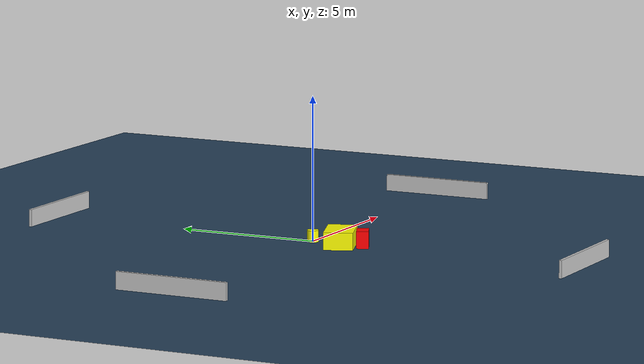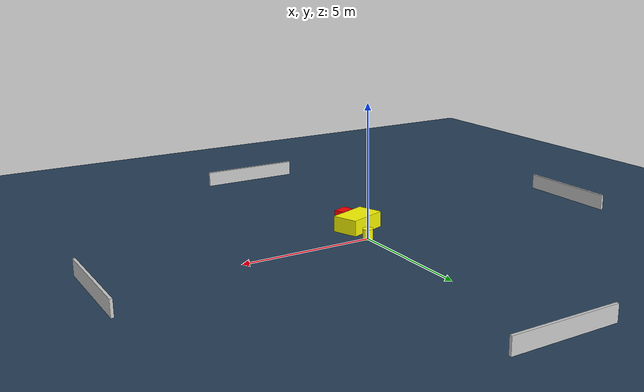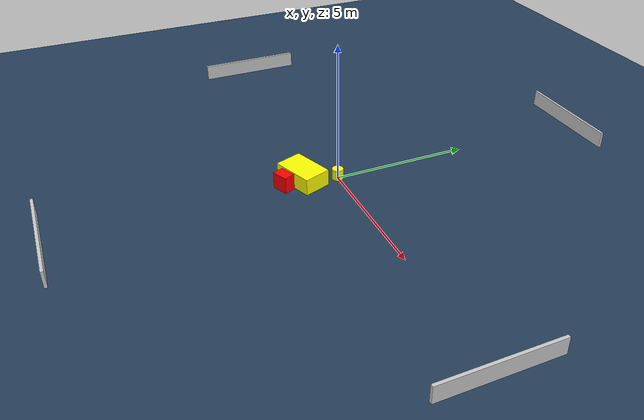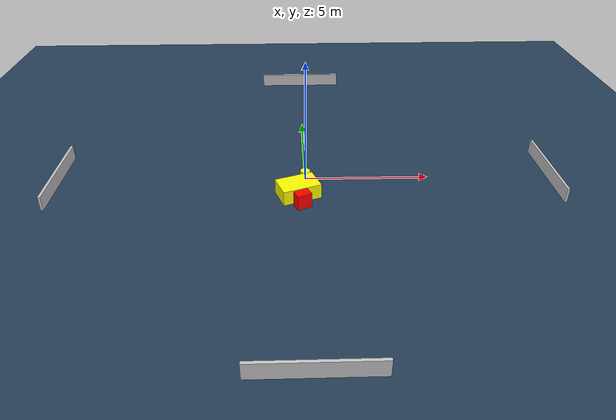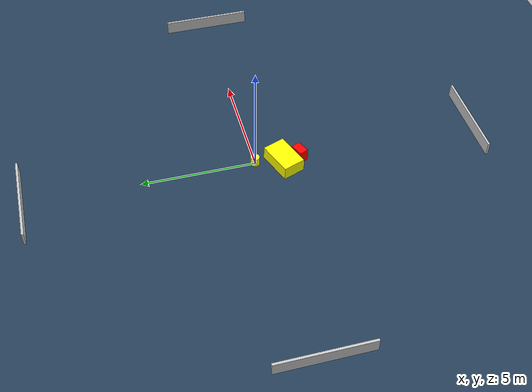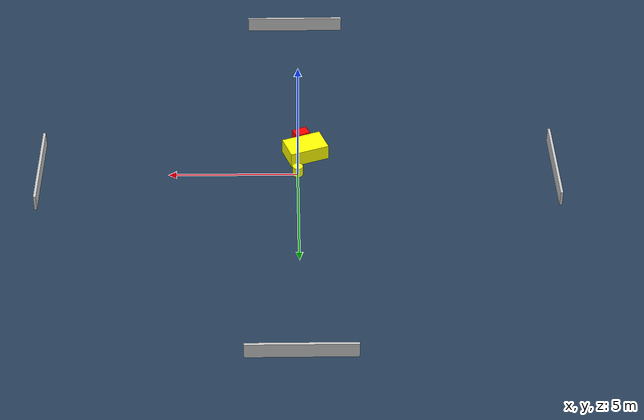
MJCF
<?xml version="1.0" ?>
<mujoco model="generated_environment">
  <option timestep="0.01" integrator="RK4" cone="elliptic"/>
  <default>
    <geom density="1"/>
  </default>
  <asset>
    <texture builtin="gradient" height="3072" name="skybox" rgb1="0.3 0.5 0.7" rgb2="0 0 0" type="skybox" width="512"/>
    <texture builtin="checker" height="300" name="groundplane" rgb1="0.2 0.3 0.4" rgb2="0.1 0.2 0.3" type="2d" width="300"/>
    <material name="groundplane" reflectance="0.2" texrepeat="5 5" texture="groundplane"/>
  </asset>
  <worldbody>
    <light dir="0 0 -1" directional="true" pos="0 0 1.5"/>
    <geom condim="3" friction="0.5 0.005 0.001" material="groundplane" name="floor" pos="0 0 0" size="0 0 0.05" type="plane"/>
    <body name="walls">
      <geom name="wall_1" condim="4" pos="-10.0 0.0 0.3" rgba="0.800000011920929 0.800000011920929 0.800000011920929 1.0" size="0.05 2.0 0.3" type="box"/>
      <geom name="wall_2" condim="4" pos="10.0 0.0 0.3" rgba="0.800000011920929 0.800000011920929 0.800000011920929 1.0" size="0.05 2.0 0.3" type="box"/>
      <geom name="wall_3" condim="4" pos="0.0 -10.0 0.3" rgba="0.800000011920929 0.800000011920929 0.800000011920929 1.0" size="2.0 0.05 0.3" type="box"/>
      <geom name="wall_4" condim="4" pos="0.0 10.0 0.3" rgba="0.800000011920929 0.800000011920929 0.800000011920929 1.0" size="2.0 0.05 0.3" type="box"/>
    </body>
    <body name="robot">
      <joint name="joint_x" type="slide" pos="0 0 0" axis="1 0 0"/>
      <joint name="joint_y" type="slide" pos="0 0 0" axis="0 1 0"/>
      <geom name="robot" type="cylinder" pos="0.0 0.0 0.2" size="0.2 0.2 0.0" mass="5.0" friction="1.0 0.005 0.0001" condim="4" rgba="1.0 1.0 0.0 1.0"/>
    </body>
    <body name="obstacle_1_movable">
      <geom name="obstacle_1_movable" condim="4" pos="-0.3125151684867558 -1.1987107104913466 0.3" euler="0 0 20.04909433503647" friction="0.0 0.005 0.001" rgba="1.0 1.0 0.0 1.0" size="0.7811060431143564 0.5053464860906101 0.3" type="box" mass="0.1"/>
      <joint type="free"/>
    </body>
    <body name="obstacle_2_static">
      <geom name="obstacle_2_static" condim="4" pos="-0.15196758207451516 -1.9603768085456272 0.3" euler="0 0 114.05339240581402" friction="0.0 0.005 0.001" rgba="1.0 0.0 0.0 1.0" size="0.20578373976793776 0.2947110729610739 0.3" type="box"/>
    </body>
  </worldbody>
  <actuator>
    <motor name="actuator_x" joint="joint_x" gear="1" ctrlrange="-1 1"/>
    <motor name="actuator_y" joint="joint_y" gear="1" ctrlrange="-1 1"/>
  </actuator>
</mujoco>
